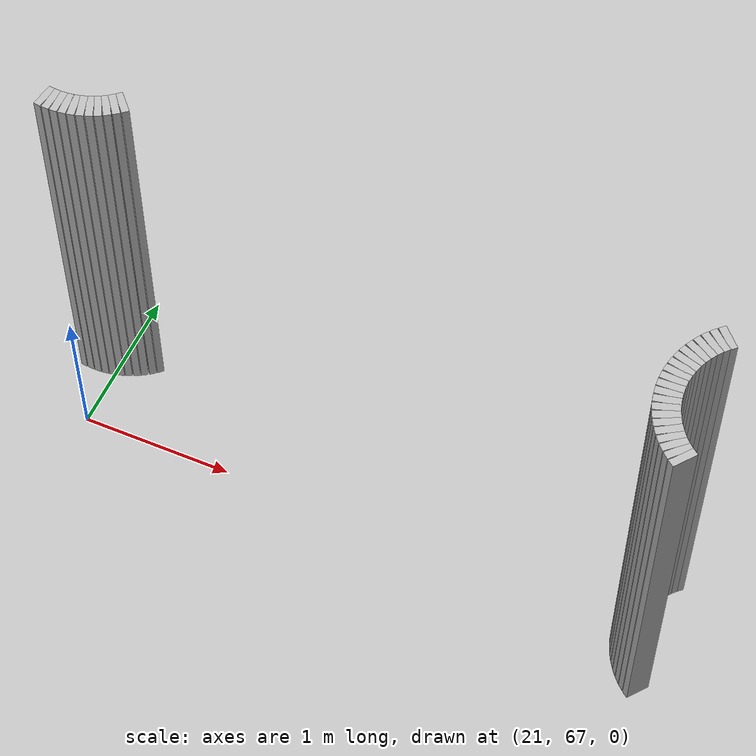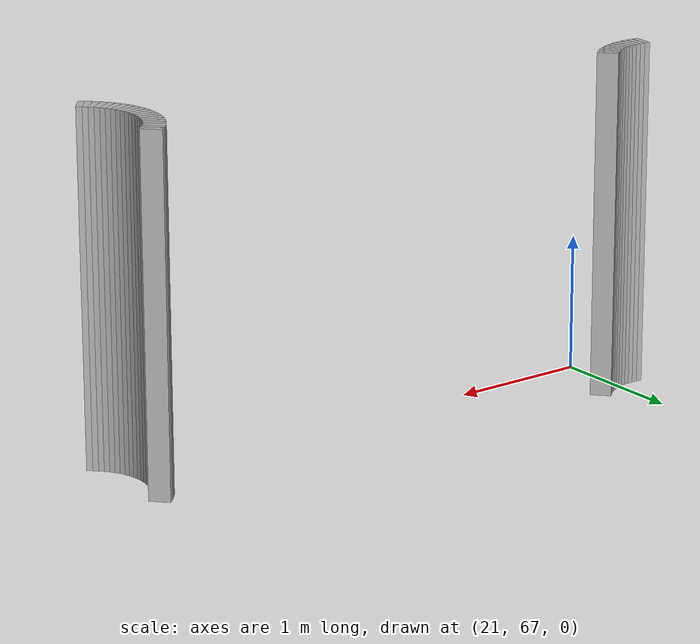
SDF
<sdf version="1.6">
 <model name="sps_1002">
  <static>1</static>
  <allow_auto_disable>0</allow_auto_disable>
  <link name="Wall2252">
   <collision name="collision"><geometry><box><size>0.0453637 0.15 2.5</size></box></geometry></collision>
   <visual name="visual">
    <geometry><box><size>0.0453637 0.15 2.5</size></box></geometry>
    <transparency>0.0</transparency>
   </visual>
   <pose>24.8733 66.6067 1.25 0 -0 2.48787</pose>
  </link>
  <link name="Wall2253">
   <collision name="collision"><geometry><box><size>0.0452735 0.15 2.5</size></box></geometry></collision>
   <visual name="visual">
    <geometry><box><size>0.0452735 0.15 2.5</size></box></geometry>
    <transparency>0.0</transparency>
   </visual>
   <pose>24.8386 66.6358 1.25 0 -0 2.40006</pose>
  </link>
  <link name="Wall2254">
   <collision name="collision"><geometry><box><size>0.0452735 0.15 2.5</size></box></geometry></collision>
   <visual name="visual">
    <geometry><box><size>0.0452735 0.15 2.5</size></box></geometry>
    <transparency>0.0</transparency>
   </visual>
   <pose>24.8066 66.6678 1.25 0 -0 2.31233</pose>
  </link>
  <link name="Wall2255">
   <collision name="collision"><geometry><box><size>0.0454008 0.15 2.5</size></box></geometry></collision>
   <visual name="visual">
    <geometry><box><size>0.0454008 0.15 2.5</size></box></geometry>
    <transparency>0.0</transparency>
   </visual>
   <pose>24.7775 66.7025 1.25 0 -0 2.22559</pose>
  </link>
  <link name="Wall2256">
   <collision name="collision"><geometry><box><size>0.0454637 0.15 2.5</size></box></geometry></collision>
   <visual name="visual">
    <geometry><box><size>0.0454637 0.15 2.5</size></box></geometry>
    <transparency>0.0</transparency>
   </visual>
   <pose>24.7515 66.7397 1.25 0 -0 2.13608</pose>
  </link>
  <link name="Wall2257">
   <collision name="collision"><geometry><box><size>0.0453724 0.15 2.5</size></box></geometry></collision>
   <visual name="visual">
    <geometry><box><size>0.0453724 0.15 2.5</size></box></geometry>
    <transparency>0.0</transparency>
   </visual>
   <pose>24.7288 66.779 1.25 0 -0 2.05189</pose>
  </link>
  <link name="Wall2258">
   <collision name="collision"><geometry><box><size>0.0454759 0.15 2.5</size></box></geometry></collision>
   <visual name="visual">
    <geometry><box><size>0.0454759 0.15 2.5</size></box></geometry>
    <transparency>0.0</transparency>
   </visual>
   <pose>24.7096 66.8201 1.25 0 -0 1.96476</pose>
  </link>
  <link name="Wall2259">
   <collision name="collision"><geometry><box><size>0.0452874 0.15 2.5</size></box></geometry></collision>
   <visual name="visual">
    <geometry><box><size>0.0452874 0.15 2.5</size></box></geometry>
    <transparency>0.0</transparency>
   </visual>
   <pose>24.6941 66.8627 1.25 0 -0 1.87465</pose>
  </link>
  <link name="Wall2260">
   <collision name="collision"><geometry><box><size>0.0452689 0.15 2.5</size></box></geometry></collision>
   <visual name="visual">
    <geometry><box><size>0.0452689 0.15 2.5</size></box></geometry>
    <transparency>0.0</transparency>
   </visual>
   <pose>24.6824 66.9064 1.25 0 -0 1.78961</pose>
  </link>
  <link name="Wall2261">
   <collision name="collision"><geometry><box><size>0.0453551 0.15 2.5</size></box></geometry></collision>
   <visual name="visual">
    <geometry><box><size>0.0453551 0.15 2.5</size></box></geometry>
    <transparency>0.0</transparency>
   </visual>
   <pose>24.6746 66.951 1.25 0 -0 1.69899</pose>
  </link>
  <link name="Wall2262">
   <collision name="collision"><geometry><box><size>0.0454548 0.15 2.5</size></box></geometry></collision>
   <visual name="visual">
    <geometry><box><size>0.0454548 0.15 2.5</size></box></geometry>
    <transparency>0.0</transparency>
   </visual>
   <pose>24.6706 66.9962 1.25 0 -0 1.61512</pose>
  </link>
  <link name="Wall2263">
   <collision name="collision"><geometry><box><size>0.0454548 0.15 2.5</size></box></geometry></collision>
   <visual name="visual">
    <geometry><box><size>0.0454548 0.15 2.5</size></box></geometry>
    <transparency>0.0</transparency>
   </visual>
   <pose>24.6706 67.0416 1.25 0 -0 1.52647</pose>
  </link>
  <link name="Wall2264">
   <collision name="collision"><geometry><box><size>0.0453788 0.15 2.5</size></box></geometry></collision>
   <visual name="visual">
    <geometry><box><size>0.0453788 0.15 2.5</size></box></geometry>
    <transparency>0.0</transparency>
   </visual>
   <pose>24.6746 67.0868 1.25 0 -0 1.4386</pose>
  </link>
  <link name="Wall2265">
   <collision name="collision"><geometry><box><size>0.0453285 0.15 2.5</size></box></geometry></collision>
   <visual name="visual">
    <geometry><box><size>0.0453285 0.15 2.5</size></box></geometry>
    <transparency>0.0</transparency>
   </visual>
   <pose>24.6825 67.1314 1.25 0 -0 1.35227</pose>
  </link>
  <link name="Wall2266">
   <collision name="collision"><geometry><box><size>0.0452475 0.15 2.5</size></box></geometry></collision>
   <visual name="visual">
    <geometry><box><size>0.0452475 0.15 2.5</size></box></geometry>
    <transparency>0.0</transparency>
   </visual>
   <pose>24.6943 67.1751 1.25 0 -0 1.26526</pose>
  </link>
  <link name="Wall2267">
   <collision name="collision"><geometry><box><size>0.0455089 0.15 2.5</size></box></geometry></collision>
   <visual name="visual">
    <geometry><box><size>0.0455089 0.15 2.5</size></box></geometry>
    <transparency>0.0</transparency>
   </visual>
   <pose>24.7098 67.2177 1.25 0 -0 1.17858</pose>
  </link>
  <link name="Wall2268">
   <collision name="collision"><geometry><box><size>0.0453183 0.15 2.5</size></box></geometry></collision>
   <visual name="visual">
    <geometry><box><size>0.0453183 0.15 2.5</size></box></geometry>
    <transparency>0.0</transparency>
   </visual>
   <pose>24.729 67.2588 1.25 0 -0 1.08908</pose>
  </link>
  <link name="Wall2269">
   <collision name="collision"><geometry><box><size>0.045211 0.15 2.5</size></box></geometry></collision>
   <visual name="visual">
    <geometry><box><size>0.045211 0.15 2.5</size></box></geometry>
    <transparency>0.0</transparency>
   </visual>
   <pose>24.7515 67.298 1.25 0 -0 1.00676</pose>
  </link>
  <link name="Wall2270">
   <collision name="collision"><geometry><box><size>0.0455126 0.15 2.5</size></box></geometry></collision>
   <visual name="visual">
    <geometry><box><size>0.0455126 0.15 2.5</size></box></geometry>
    <transparency>0.0</transparency>
   </visual>
   <pose>24.7775 67.3351 1.25 0 -0 0.912811</pose>
  </link>
  <link name="Wall2271">
   <collision name="collision"><geometry><box><size>0.0452735 0.15 2.5</size></box></geometry></collision>
   <visual name="visual">
    <geometry><box><size>0.0452735 0.15 2.5</size></box></geometry>
    <transparency>0.0</transparency>
   </visual>
   <pose>24.8068 67.3698 1.25 0 -0 0.829263</pose>
  </link>
  <link name="Wall2272">
   <collision name="collision"><geometry><box><size>0.0452735 0.15 2.5</size></box></geometry></collision>
   <visual name="visual">
    <geometry><box><size>0.0452735 0.15 2.5</size></box></geometry>
    <transparency>0.0</transparency>
   </visual>
   <pose>24.8387 67.4018 1.25 0 -0 0.741533</pose>
  </link>
  <link name="Wall2557">
   <collision name="collision"><geometry><box><size>0.0452735 0.15 2.5</size></box></geometry></collision>
   <visual name="visual">
    <geometry><box><size>0.0452735 0.15 2.5</size></box></geometry>
    <transparency>0.0</transparency>
   </visual>
   <pose>21.2114 67.5774 1.25 0 0 -2.40006</pose>
  </link>
  <link name="Wall2558">
   <collision name="collision"><geometry><box><size>0.0453637 0.15 2.5</size></box></geometry></collision>
   <visual name="visual">
    <geometry><box><size>0.0453637 0.15 2.5</size></box></geometry>
    <transparency>0.0</transparency>
   </visual>
   <pose>21.1767 67.5483 1.25 0 0 -2.48787</pose>
  </link>
  <link name="Wall2559">
   <collision name="collision"><geometry><box><size>0.0453984 0.15 2.5</size></box></geometry></collision>
   <visual name="visual">
    <geometry><box><size>0.0453984 0.15 2.5</size></box></geometry>
    <transparency>0.0</transparency>
   </visual>
   <pose>21.1395 67.5224 1.25 0 0 -2.57858</pose>
  </link>
  <link name="Wall2560">
   <collision name="collision"><geometry><box><size>0.0453724 0.15 2.5</size></box></geometry></collision>
   <visual name="visual">
    <geometry><box><size>0.0453724 0.15 2.5</size></box></geometry>
    <transparency>0.0</transparency>
   </visual>
   <pose>21.1002 67.4998 1.25 0 0 -2.6605</pose>
  </link>
  <link name="Wall2561">
   <collision name="collision"><geometry><box><size>0.0452834 0.15 2.5</size></box></geometry></collision>
   <visual name="visual">
    <geometry><box><size>0.0452834 0.15 2.5</size></box></geometry>
    <transparency>0.0</transparency>
   </visual>
   <pose>21.0591 67.4806 1.25 0 0 -2.74732</pose>
  </link>
  <link name="Wall2562">
   <collision name="collision"><geometry><box><size>0.0454804 0.15 2.5</size></box></geometry></collision>
   <visual name="visual">
    <geometry><box><size>0.0454804 0.15 2.5</size></box></geometry>
    <transparency>0.0</transparency>
   </visual>
   <pose>21.0165 67.4651 1.25 0 0 -2.83767</pose>
  </link>
  <link name="Wall2563">
   <collision name="collision"><geometry><box><size>0.0452557 0.15 2.5</size></box></geometry></collision>
   <visual name="visual">
    <geometry><box><size>0.0452557 0.15 2.5</size></box></geometry>
    <transparency>0.0</transparency>
   </visual>
   <pose>20.9727 67.4534 1.25 0 0 -2.92409</pose>
  </link>
  <link name="Wall2564">
   <collision name="collision"><geometry><box><size>0.0453788 0.15 2.5</size></box></geometry></collision>
   <visual name="visual">
    <geometry><box><size>0.0453788 0.15 2.5</size></box></geometry>
    <transparency>0.0</transparency>
   </visual>
   <pose>20.9282 67.4455 1.25 0 0 -3.0094</pose>
  </link>
  <link name="Wall2565">
   <collision name="collision"><geometry><box><size>0.0454471 0.15 2.5</size></box></geometry></collision>
   <visual name="visual">
    <geometry><box><size>0.0454471 0.15 2.5</size></box></geometry>
    <transparency>0.0</transparency>
   </visual>
   <pose>20.883 67.4416 1.25 0 0 -3.10129</pose>
  </link>
  <link name="Wall2566">
   <collision name="collision"><geometry><box><size>0.0454471 0.15 2.5</size></box></geometry></collision>
   <visual name="visual">
    <geometry><box><size>0.0454471 0.15 2.5</size></box></geometry>
    <transparency>0.0</transparency>
   </visual>
   <pose>20.8375 67.4416 1.25 0 -0 3.10129</pose>
  </link>
  <link name="Wall2567">
   <collision name="collision"><geometry><box><size>0.0451973 0.15 2.5</size></box></geometry></collision>
   <visual name="visual">
    <geometry><box><size>0.0451973 0.15 2.5</size></box></geometry>
    <transparency>0.0</transparency>
   </visual>
   <pose>20.7924 67.4455 1.25 0 -0 3.00886</pose>
  </link>
 </model>
</sdf>
